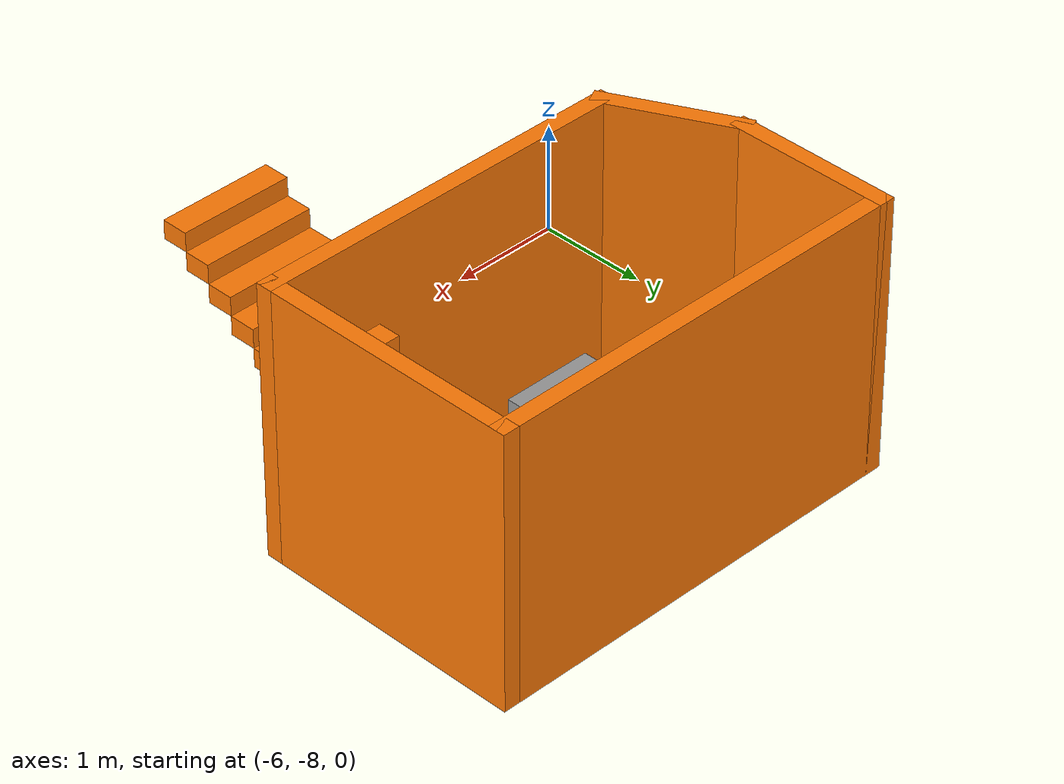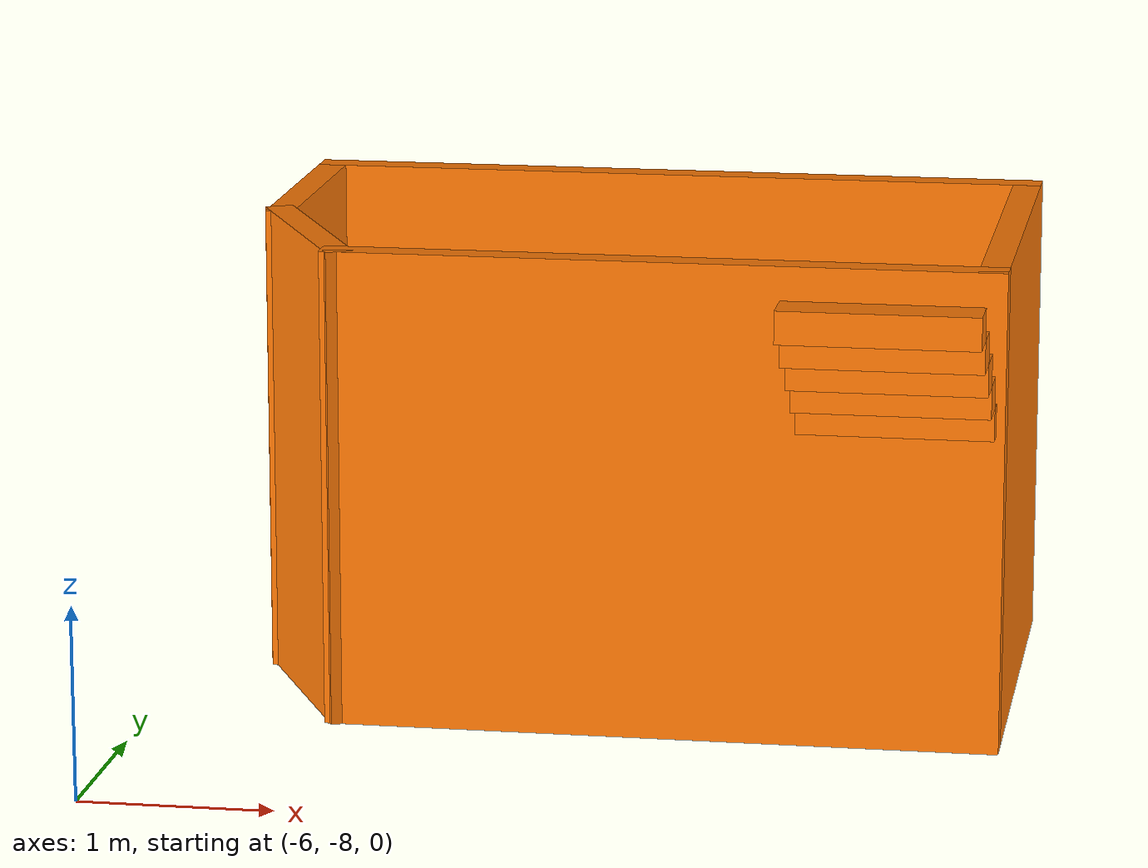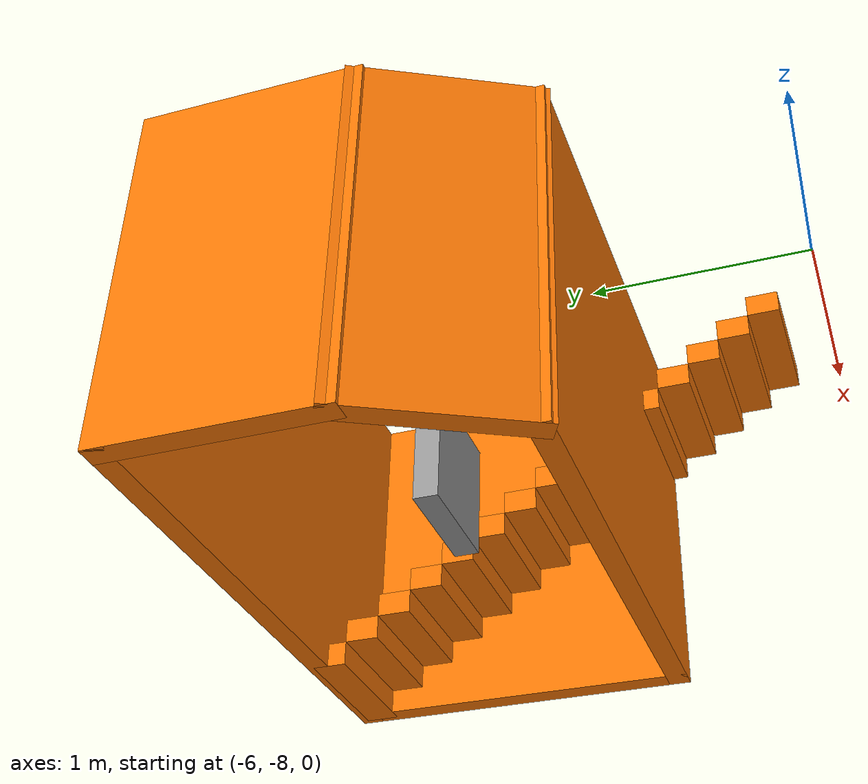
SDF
<?xml version='1.0'?>
<sdf version='1.6'>
  <model name='Untitledr'>
    <pose frame=''>-3.57781 -5.7975 0 0 -0 0</pose>
    <link name='Stairs_0'>
      <visual name='Stairs_0_Visual_0'>
        <pose frame=''>1.46781 1.61083 0.083333 0 -0 0</pose>
        <geometry>
          <box>
            <size>1 0.233333 0.166667</size>
          </box>
        </geometry>
        <material>
          <script>
            <uri>file://media/materials/scripts/gazebo.material</uri>
            <name>Gazebo/Grey</name>
          </script>
          <ambient>0.996078 0.47451 0.0196078 1</ambient>
        </material>
        <meta>
          <layer>0</layer>
        </meta>
      </visual>
      <collision name='Stairs_0_Collision_0'>
        <geometry>
          <box>
            <size>1 0.233333 0.166667</size>
          </box>
        </geometry>
        <pose frame=''>1.46781 1.61083 0.083333 0 -0 0</pose>
      </collision>
      <visual name='Stairs_0_Visual_1'>
        <pose frame=''>1.46781 1.3775 0.25 0 -0 0</pose>
        <geometry>
          <box>
            <size>1 0.233333 0.166667</size>
          </box>
        </geometry>
        <material>
          <script>
            <uri>file://media/materials/scripts/gazebo.material</uri>
            <name>Gazebo/Grey</name>
          </script>
          <ambient>0.996078 0.47451 0.0196078 1</ambient>
        </material>
        <meta>
          <layer>0</layer>
        </meta>
      </visual>
      <collision name='Stairs_0_Collision_1'>
        <geometry>
          <box>
            <size>1 0.233333 0.166667</size>
          </box>
        </geometry>
        <pose frame=''>1.46781 1.3775 0.25 0 -0 0</pose>
      </collision>
      <visual name='Stairs_0_Visual_2'>
        <pose frame=''>1.46781 1.14417 0.416667 0 -0 0</pose>
        <geometry>
          <box>
            <size>1 0.233333 0.166667</size>
          </box>
        </geometry>
        <material>
          <script>
            <uri>file://media/materials/scripts/gazebo.material</uri>
            <name>Gazebo/Grey</name>
          </script>
          <ambient>0.996078 0.47451 0.0196078 1</ambient>
        </material>
        <meta>
          <layer>0</layer>
        </meta>
      </visual>
      <collision name='Stairs_0_Collision_2'>
        <geometry>
          <box>
            <size>1 0.233333 0.166667</size>
          </box>
        </geometry>
        <pose frame=''>1.46781 1.14417 0.416667 0 -0 0</pose>
      </collision>
      <visual name='Stairs_0_Visual_3'>
        <pose frame=''>1.46781 0.910833 0.583333 0 -0 0</pose>
        <geometry>
          <box>
            <size>1 0.233333 0.166667</size>
          </box>
        </geometry>
        <material>
          <script>
            <uri>file://media/materials/scripts/gazebo.material</uri>
            <name>Gazebo/Grey</name>
          </script>
          <ambient>0.996078 0.47451 0.0196078 1</ambient>
        </material>
        <meta>
          <layer>0</layer>
        </meta>
      </visual>
      <collision name='Stairs_0_Collision_3'>
        <geometry>
          <box>
            <size>1 0.233333 0.166667</size>
          </box>
        </geometry>
        <pose frame=''>1.46781 0.910833 0.583333 0 -0 0</pose>
      </collision>
      <visual name='Stairs_0_Visual_4'>
        <pose frame=''>1.46781 0.6775 0.75 0 -0 0</pose>
        <geometry>
          <box>
            <size>1 0.233333 0.166667</size>
          </box>
        </geometry>
        <material>
          <script>
            <uri>file://media/materials/scripts/gazebo.material</uri>
            <name>Gazebo/Grey</name>
          </script>
          <ambient>0.996078 0.47451 0.0196078 1</ambient>
        </material>
        <meta>
          <layer>0</layer>
        </meta>
      </visual>
      <collision name='Stairs_0_Collision_4'>
        <geometry>
          <box>
            <size>1 0.233333 0.166667</size>
          </box>
        </geometry>
        <pose frame=''>1.46781 0.6775 0.75 0 -0 0</pose>
      </collision>
      <visual name='Stairs_0_Visual_5'>
        <pose frame=''>1.46781 0.444167 0.916667 0 -0 0</pose>
        <geometry>
          <box>
            <size>1 0.233333 0.166667</size>
          </box>
        </geometry>
        <material>
          <script>
            <uri>file://media/materials/scripts/gazebo.material</uri>
            <name>Gazebo/Grey</name>
          </script>
          <ambient>0.996078 0.47451 0.0196078 1</ambient>
        </material>
        <meta>
          <layer>0</layer>
        </meta>
      </visual>
      <collision name='Stairs_0_Collision_5'>
        <geometry>
          <box>
            <size>1 0.233333 0.166667</size>
          </box>
        </geometry>
        <pose frame=''>1.46781 0.444167 0.916667 0 -0 0</pose>
      </collision>
      <visual name='Stairs_0_Visual_6'>
        <pose frame=''>1.46781 0.210833 1.08333 0 -0 0</pose>
        <geometry>
          <box>
            <size>1 0.233333 0.166667</size>
          </box>
        </geometry>
        <material>
          <script>
            <uri>file://media/materials/scripts/gazebo.material</uri>
            <name>Gazebo/Grey</name>
          </script>
          <ambient>0.996078 0.47451 0.0196078 1</ambient>
        </material>
        <meta>
          <layer>0</layer>
        </meta>
      </visual>
      <collision name='Stairs_0_Collision_6'>
        <geometry>
          <box>
            <size>1 0.233333 0.166667</size>
          </box>
        </geometry>
        <pose frame=''>1.46781 0.210833 1.08333 0 -0 0</pose>
      </collision>
      <visual name='Stairs_0_Visual_7'>
        <pose frame=''>1.46781 -0.0225 1.25 0 -0 0</pose>
        <geometry>
          <box>
            <size>1 0.233333 0.166667</size>
          </box>
        </geometry>
        <material>
          <script>
            <uri>file://media/materials/scripts/gazebo.material</uri>
            <name>Gazebo/Grey</name>
          </script>
          <ambient>0.996078 0.47451 0.0196078 1</ambient>
        </material>
        <meta>
          <layer>0</layer>
        </meta>
      </visual>
      <collision name='Stairs_0_Collision_7'>
        <geometry>
          <box>
            <size>1 0.233333 0.166667</size>
          </box>
        </geometry>
        <pose frame=''>1.46781 -0.0225 1.25 0 -0 0</pose>
      </collision>
      <visual name='Stairs_0_Visual_8'>
        <pose frame=''>1.46781 -0.255833 1.41667 0 -0 0</pose>
        <geometry>
          <box>
            <size>1 0.233333 0.166667</size>
          </box>
        </geometry>
        <material>
          <script>
            <uri>file://media/materials/scripts/gazebo.material</uri>
            <name>Gazebo/Grey</name>
          </script>
          <ambient>0.996078 0.47451 0.0196078 1</ambient>
        </material>
        <meta>
          <layer>0</layer>
        </meta>
      </visual>
      <collision name='Stairs_0_Collision_8'>
        <geometry>
          <box>
            <size>1 0.233333 0.166667</size>
          </box>
        </geometry>
        <pose frame=''>1.46781 -0.255833 1.41667 0 -0 0</pose>
      </collision>
      <visual name='Stairs_0_Visual_9'>
        <pose frame=''>1.46781 -0.489167 1.58333 0 -0 0</pose>
        <geometry>
          <box>
            <size>1 0.233333 0.166667</size>
          </box>
        </geometry>
        <material>
          <script>
            <uri>file://media/materials/scripts/gazebo.material</uri>
            <name>Gazebo/Grey</name>
          </script>
          <ambient>0.996078 0.47451 0.0196078 1</ambient>
        </material>
        <meta>
          <layer>0</layer>
        </meta>
      </visual>
      <collision name='Stairs_0_Collision_9'>
        <geometry>
          <box>
            <size>1 0.233333 0.166667</size>
          </box>
        </geometry>
        <pose frame=''>1.46781 -0.489167 1.58333 0 -0 0</pose>
      </collision>
      <visual name='Stairs_0_Visual_10'>
        <pose frame=''>1.46781 -0.7225 1.75 0 -0 0</pose>
        <geometry>
          <box>
            <size>1 0.233333 0.166667</size>
          </box>
        </geometry>
        <material>
          <script>
            <uri>file://media/materials/scripts/gazebo.material</uri>
            <name>Gazebo/Grey</name>
          </script>
          <ambient>0.996078 0.47451 0.0196078 1</ambient>
        </material>
        <meta>
          <layer>0</layer>
        </meta>
      </visual>
      <collision name='Stairs_0_Collision_10'>
        <geometry>
          <box>
            <size>1 0.233333 0.166667</size>
          </box>
        </geometry>
        <pose frame=''>1.46781 -0.7225 1.75 0 -0 0</pose>
      </collision>
      <visual name='Stairs_0_Visual_11'>
        <pose frame=''>1.46781 -0.955833 1.91667 0 -0 0</pose>
        <geometry>
          <box>
            <size>1 0.233333 0.166667</size>
          </box>
        </geometry>
        <material>
          <script>
            <uri>file://media/materials/scripts/gazebo.material</uri>
            <name>Gazebo/Grey</name>
          </script>
          <ambient>0.996078 0.47451 0.0196078 1</ambient>
        </material>
        <meta>
          <layer>0</layer>
        </meta>
      </visual>
      <collision name='Stairs_0_Collision_11'>
        <geometry>
          <box>
            <size>1 0.233333 0.166667</size>
          </box>
        </geometry>
        <pose frame=''>1.46781 -0.955833 1.91667 0 -0 0</pose>
      </collision>
      <visual name='Stairs_0_Visual_12'>
        <pose frame=''>1.46781 -1.18917 2.08333 0 -0 0</pose>
        <geometry>
          <box>
            <size>1 0.233333 0.166667</size>
          </box>
        </geometry>
        <material>
          <script>
            <uri>file://media/materials/scripts/gazebo.material</uri>
            <name>Gazebo/Grey</name>
          </script>
          <ambient>0.996078 0.47451 0.0196078 1</ambient>
        </material>
        <meta>
          <layer>0</layer>
        </meta>
      </visual>
      <collision name='Stairs_0_Collision_12'>
        <geometry>
          <box>
            <size>1 0.233333 0.166667</size>
          </box>
        </geometry>
        <pose frame=''>1.46781 -1.18917 2.08333 0 -0 0</pose>
      </collision>
      <visual name='Stairs_0_Visual_13'>
        <pose frame=''>1.46781 -1.4225 2.25 0 -0 0</pose>
        <geometry>
          <box>
            <size>1 0.233333 0.166667</size>
          </box>
        </geometry>
        <material>
          <script>
            <uri>file://media/materials/scripts/gazebo.material</uri>
            <name>Gazebo/Grey</name>
          </script>
          <ambient>0.996078 0.47451 0.0196078 1</ambient>
        </material>
        <meta>
          <layer>0</layer>
        </meta>
      </visual>
      <collision name='Stairs_0_Collision_13'>
        <geometry>
          <box>
            <size>1 0.233333 0.166667</size>
          </box>
        </geometry>
        <pose frame=''>1.46781 -1.4225 2.25 0 -0 0</pose>
      </collision>
      <visual name='Stairs_0_Visual_14'>
        <pose frame=''>1.46781 -1.65583 2.41667 0 -0 0</pose>
        <geometry>
          <box>
            <size>1 0.233333 0.166667</size>
          </box>
        </geometry>
        <material>
          <script>
            <uri>file://media/materials/scripts/gazebo.material</uri>
            <name>Gazebo/Grey</name>
          </script>
          <ambient>0.996078 0.47451 0.0196078 1</ambient>
        </material>
        <meta>
          <layer>0</layer>
        </meta>
      </visual>
      <collision name='Stairs_0_Collision_14'>
        <geometry>
          <box>
            <size>1 0.233333 0.166667</size>
          </box>
        </geometry>
        <pose frame=''>1.46781 -1.65583 2.41667 0 -0 0</pose>
      </collision>
    </link>
    <link name='Wall_21'>
      <collision name='Wall_21_Collision'>
        <geometry>
          <box>
            <size>1.5 0.15 2.5</size>
          </box>
        </geometry>
        <pose frame=''>0 0 1.25 0 -0 0</pose>
      </collision>
      <visual name='Wall_21_Visual'>
        <pose frame=''>0 0 1.25 0 -0 0</pose>
        <geometry>
          <box>
            <size>1.5 0.15 2.5</size>
          </box>
        </geometry>
        <material>
          <script>
            <uri>file://media/materials/scripts/gazebo.material</uri>
            <name>Gazebo/Grey</name>
          </script>
          <ambient>0.996078 0.47451 0.0196078 1</ambient>
        </material>
        <meta>
          <layer>0</layer>
        </meta>
      </visual>
      <pose frame=''>-1.91219 1.0225 0 0 -0 1.5708</pose>
    </link>
    <link name='Wall_22'>
      <collision name='Wall_22_Collision'>
        <geometry>
          <box>
            <size>4 0.15 2.5</size>
          </box>
        </geometry>
        <pose frame=''>0 0 1.25 0 -0 0</pose>
      </collision>
      <visual name='Wall_22_Visual'>
        <pose frame=''>0 0 1.25 0 -0 0</pose>
        <geometry>
          <box>
            <size>4 0.15 2.5</size>
          </box>
        </geometry>
        <material>
          <script>
            <uri>file://media/materials/scripts/gazebo.material</uri>
            <name>Gazebo/Grey</name>
          </script>
          <ambient>0.996078 0.47451 0.0196078 1</ambient>
        </material>
        <meta>
          <layer>0</layer>
        </meta>
      </visual>
      <pose frame=''>0.012811 1.6975 0 0 -0 0</pose>
    </link>
    <link name='Wall_23'>
      <collision name='Wall_23_Collision'>
        <geometry>
          <box>
            <size>2.5 0.15 2.5</size>
          </box>
        </geometry>
        <pose frame=''>0 0 1.25 0 -0 0</pose>
      </collision>
      <visual name='Wall_23_Visual'>
        <pose frame=''>0 0 1.25 0 -0 0</pose>
        <geometry>
          <box>
            <size>2.5 0.15 2.5</size>
          </box>
        </geometry>
        <material>
          <script>
            <uri>file://media/materials/scripts/gazebo.material</uri>
            <name>Gazebo/Grey</name>
          </script>
          <ambient>0.996078 0.47451 0.0196078 1</ambient>
        </material>
        <meta>
          <layer>0</layer>
        </meta>
      </visual>
      <pose frame=''>1.93781 0.5225 0 0 -0 -1.5708</pose>
    </link>
    <link name='Wall_24'>
      <collision name='Wall_24_Collision'>
        <geometry>
          <box>
            <size>3.5 0.15 2.5</size>
          </box>
        </geometry>
        <pose frame=''>0 0 1.25 0 -0 0</pose>
      </collision>
      <visual name='Wall_24_Visual'>
        <pose frame=''>0 0 1.25 0 -0 0</pose>
        <geometry>
          <box>
            <size>3.5 0.15 2.5</size>
          </box>
        </geometry>
        <material>
          <script>
            <uri>file://media/materials/scripts/gazebo.material</uri>
            <name>Gazebo/Grey</name>
          </script>
          <ambient>0.996078 0.47451 0.0196078 1</ambient>
        </material>
        <meta>
          <layer>0</layer>
        </meta>
      </visual>
      <pose frame=''>0.262811 -0.6525 0 0 -0 3.14159</pose>
    </link>
    <link name='Wall_25'>
      <collision name='Wall_25_Collision'>
        <geometry>
          <box>
            <size>1.26803 0.15 2.5</size>
          </box>
        </geometry>
        <pose frame=''>0 0 1.25 0 -0 0</pose>
      </collision>
      <visual name='Wall_25_Visual'>
        <pose frame=''>0 0 1.25 0 -0 0</pose>
        <geometry>
          <box>
            <size>1.26803 0.15 2.5</size>
          </box>
        </geometry>
        <material>
          <script>
            <uri>file://media/materials/scripts/gazebo.material</uri>
            <name>Gazebo/Grey</name>
          </script>
          <ambient>0.996078 0.47451 0.0196078 1</ambient>
        </material>
        <meta>
          <layer>0</layer>
        </meta>
      </visual>
      <pose frame=''>-1.66219 -0.1525 0 0 -0 2.03444</pose>
    </link>
    <link name='Window_0'>
      <collision name='Window_0_Collision'>
        <geometry>
          <box>
            <size>0.8 0.17 0.8</size>
          </box>
        </geometry>
        <pose frame=''>0 0 0.4 0 -0 0</pose>
      </collision>
      <visual name='Window_0_Visual'>
        <pose frame=''>0 0 0.4 0 -0 0</pose>
        <geometry>
          <box>
            <size>0.8 0.17 0.8</size>
          </box>
        </geometry>
        <material>
          <script>
            <uri>file://media/materials/scripts/gazebo.material</uri>
            <name>Gazebo/Grey</name>
          </script>
        </material>
      </visual>
      <pose frame=''>0.207811 0.4775 0.5 0 -0 0</pose>
    </link>
    <static>1</static>
  </model>
</sdf>
